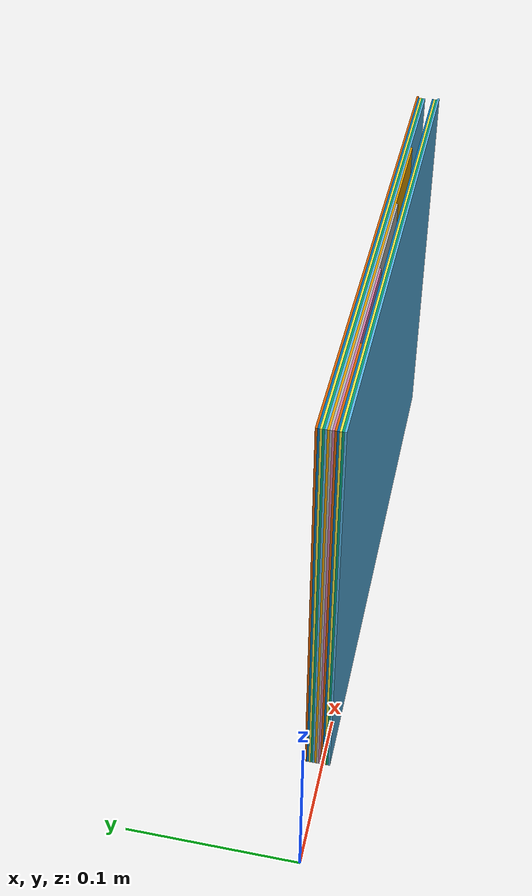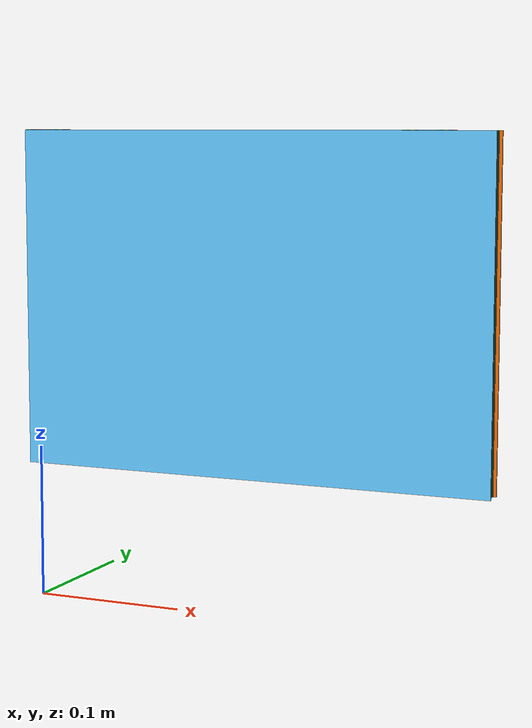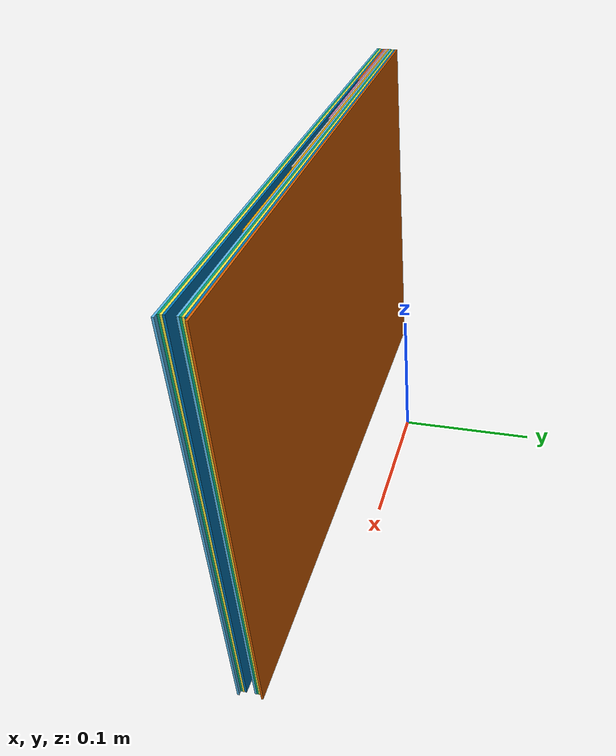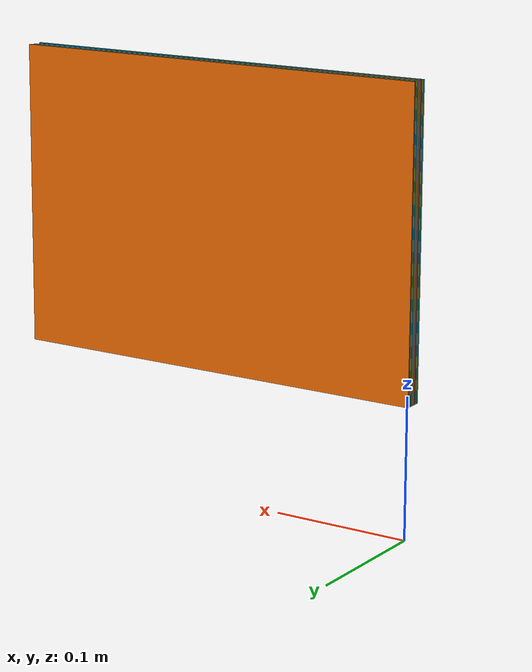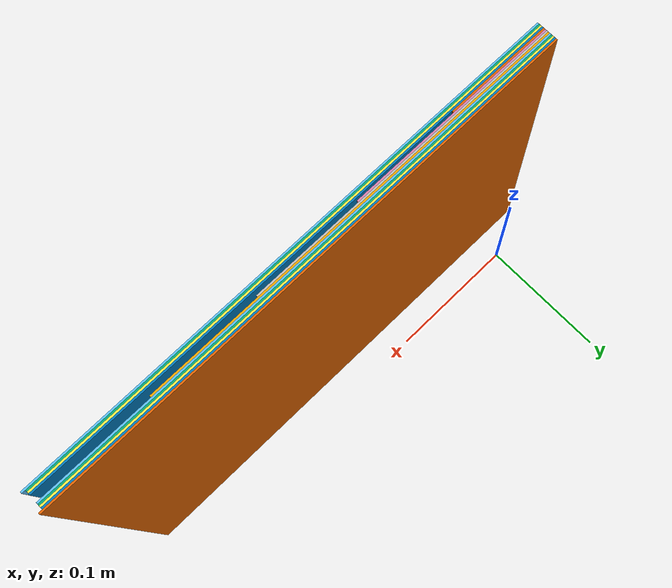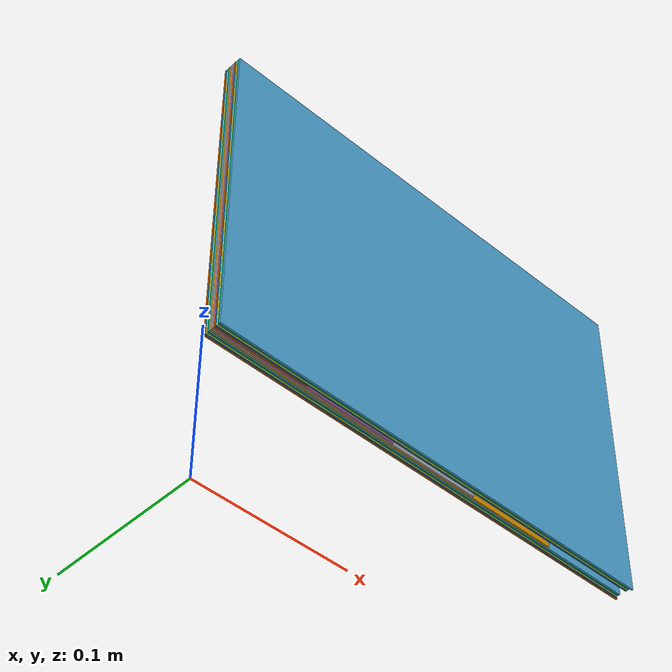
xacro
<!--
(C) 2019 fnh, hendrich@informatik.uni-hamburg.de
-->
<?xml version="1.0" ?>
<robot name="articulate_book_caterpillar"
       xmlns:controller="http://playerstage.sourceforge.net/gazebo/xmlschema/#controller"
       xmlns:interface="http://playerstage.sourceforge.net/gazebo/xmlschema/#interface"
       xmlns:sensor="http://playerstage.sourceforge.net/gazebo/xmlschema/#sensor"
       xmlns:xacro="http://www.ros.org/wiki/xacro">

  <xacro:include filename="$(find tams_books_world)/urdf/book_part.xacro" />

  <!-- main link, no inertia, no collision, no visual -->
  <link name="book_caterpillar_link" >
  </link>

  <xacro:book_part
      name="book_caterpillar_page_01"
      weight="0.039"
      mesh="caterpillar/book-caterpillar-part-01.dae"
      xsize="0.312"
      ysize="0.001"
      zsize="0.216"
  />
  <xacro:book_part
      name="book_caterpillar_page_02"
      weight="0.039"
      mesh="caterpillar/book-caterpillar-part-02.dae"
      xsize="0.310"
      ysize="0.001"
      zsize="0.216"
  />
  <xacro:book_part
      name="book_caterpillar_page_03"
      weight="0.039"
      mesh="caterpillar/book-caterpillar-part-03.dae"
      xsize="0.310"
      ysize="0.001"
      zsize="0.216"
  />
  <xacro:book_part
      name="book_caterpillar_page_04"
      weight="0.039"
      mesh="caterpillar/book-caterpillar-part-04.dae"
      xsize="0.310"
      ysize="0.001"
      zsize="0.216"
  />
  <xacro:book_part
      name="book_caterpillar_page_05"
      weight="0.039"
      mesh="caterpillar/book-caterpillar-part-05.dae"
      xsize="${0.310/5}"
      ysize="0.001"
      zsize="0.216"
  />
  <xacro:book_part
      name="book_caterpillar_page_06"
      weight="0.039"
      mesh="caterpillar/book-caterpillar-part-06.dae"
      xsize="${0.310/5*2}"
      ysize="0.001"
      zsize="0.216"
  />
  <xacro:book_part
      name="book_caterpillar_page_07"
      weight="0.039"
      mesh="caterpillar/book-caterpillar-part-07.dae"
      xsize="${0.310/5*3}"
      ysize="0.001"
      zsize="0.216"
  />
  <xacro:book_part
      name="book_caterpillar_page_08"
      weight="0.039"
      mesh="caterpillar/book-caterpillar-part-08.dae"
      xsize="${0.310/5*4}"
      ysize="0.001"
      zsize="0.216"
  />
  <xacro:book_part
      name="book_caterpillar_page_09"
      weight="0.039"
      mesh="caterpillar/book-caterpillar-part-09.dae"
      xsize="0.310"
      ysize="0.001"
      zsize="0.216"
  />
  <xacro:book_part
      name="book_caterpillar_page_10"
      weight="0.039"
      mesh="caterpillar/book-caterpillar-part-10.dae"
      xsize="0.310"
      ysize="0.001"
      zsize="0.216"
  />
  <xacro:book_part
      name="book_caterpillar_page_11"
      weight="0.039"
      mesh="caterpillar/book-caterpillar-part-11.dae"
      xsize="0.310"
      ysize="0.001"
      zsize="0.216"
  />
  <xacro:book_part
      name="book_caterpillar_page_12"
      weight="0.039"
      mesh="caterpillar/book-caterpillar-part-12.dae"
      xsize="0.310"
      ysize="0.001"
      zsize="0.216"
  />
  <xacro:book_part
      name="book_caterpillar_page_13"
      weight="0.039"
      mesh="caterpillar/book-caterpillar-part-13.dae"
      xsize="0.312"
      ysize="0.001"
      zsize="0.216"
  />

  <!-- back part of the book fixed to the root link -->
  <joint name="book_caterpillar_page_13_joint" type="fixed" >
    <parent link="book_caterpillar_link" />
    <child  link="book_caterpillar_page_13_link" />
    <origin xyz="0 ${-0.013/13} 0" rpy="0 0 0" />
  </joint>

  <joint name="book_caterpillar_page_12_joint" type="revolute" >
    <parent link="book_caterpillar_page_13_link" />
    <child  link="book_caterpillar_page_12_link" />
    <axis xyz="0 0 1" />
    <origin xyz="0 ${-0.013/13} 0" rpy="0 0 0" />
    <limit lower="-3.20" upper="0.0" effort="1" velocity="1" />
  </joint>

  <joint name="book_caterpillar_page_11_joint" type="revolute" >
    <parent link="book_caterpillar_page_12_link" />
    <child  link="book_caterpillar_page_11_link" />
    <axis xyz="0 0 1" />
    <origin xyz="0 ${-0.013/13} 0" rpy="0 0 0" />
    <limit lower="-3.20" upper="0.0" effort="1" velocity="1" />
  </joint>

  <joint name="book_caterpillar_page_10_joint" type="revolute" >
    <parent link="book_caterpillar_page_11_link" />
    <child  link="book_caterpillar_page_10_link" />
    <axis xyz="0 0 1" />
    <origin xyz="0 ${-0.013/13} 0" rpy="0 0 0" />
    <limit lower="-3.20" upper="0.0" effort="1" velocity="1" />
  </joint>

  <joint name="book_caterpillar_page_09_joint" type="revolute" >
    <parent link="book_caterpillar_page_10_link" />
    <child  link="book_caterpillar_page_09_link" />
    <axis xyz="0 0 1" />
    <origin xyz="0 ${-0.013/13} 0" rpy="0 0 0" />
    <limit lower="-3.20" upper="0.0" effort="1" velocity="1" />
  </joint>

  <joint name="book_caterpillar_page_08_joint" type="revolute" >
    <parent link="book_caterpillar_page_09_link" />
    <child  link="book_caterpillar_page_08_link" />
    <axis xyz="0 0 1" />
    <origin xyz="0 ${-0.013/13} 0" rpy="0 0 0" />
    <limit lower="-3.20" upper="0.0" effort="1" velocity="1" />
  </joint>

  <joint name="book_caterpillar_page_07_joint" type="revolute" >
    <parent link="book_caterpillar_page_08_link" />
    <child  link="book_caterpillar_page_07_link" />
    <axis xyz="0 0 1" />
    <origin xyz="0 ${-0.013/13} 0" rpy="0 0 0" />
    <limit lower="-3.20" upper="0.0" effort="1" velocity="1" />
  </joint>

  <joint name="book_caterpillar_page_06_joint" type="revolute" >
    <parent link="book_caterpillar_page_07_link" />
    <child  link="book_caterpillar_page_06_link" />
    <axis xyz="0 0 1" />
    <origin xyz="0 ${-0.013/13} 0" rpy="0 0 0" />
    <limit lower="-3.20" upper="0.0" effort="1" velocity="1" />
  </joint>

  <joint name="book_caterpillar_page_05_joint" type="revolute" >
    <parent link="book_caterpillar_page_06_link" />
    <child  link="book_caterpillar_page_05_link" />
    <axis xyz="0 0 1" />
    <origin xyz="0 ${-0.013/13} 0" rpy="0 0 0" />
    <limit lower="-3.20" upper="0.0" effort="1" velocity="1" />
  </joint>

  <joint name="book_caterpillar_page_04_joint" type="revolute" >
    <parent link="book_caterpillar_page_05_link" />
    <child  link="book_caterpillar_page_04_link" />
    <axis xyz="0 0 1" />
    <origin xyz="0 ${-0.013/13} 0" rpy="0 0 0" />
    <limit lower="-3.20" upper="0.0" effort="1" velocity="1" />
  </joint>

  <joint name="book_caterpillar_page_03_joint" type="revolute" >
    <parent link="book_caterpillar_page_04_link" />
    <child  link="book_caterpillar_page_03_link" />
    <axis xyz="0 0 1" />
    <origin xyz="0 ${-0.013/13} 0" rpy="0 0 0" />
    <limit lower="-3.20" upper="0.0" effort="1" velocity="1" />
  </joint>

  <joint name="book_caterpillar_page_02_joint" type="revolute" >
    <parent link="book_caterpillar_page_03_link" />
    <child  link="book_caterpillar_page_02_link" />
    <axis xyz="0 0 1" />
    <origin xyz="0 ${-0.013/13} 0" rpy="0 0 0" />
    <limit lower="-3.20" upper="0.0" effort="1" velocity="1" />
  </joint>

  <joint name="book_caterpillar_page_01_joint" type="revolute" >
    <parent link="book_caterpillar_page_02_link" />
    <child  link="book_caterpillar_page_01_link" />
    <axis xyz="0 0 1" />
    <origin xyz="0 ${-0.013/13} 0" rpy="0 0 0" />
    <limit lower="-3.20" upper="0.0" effort="1" velocity="1" />
  </joint>

  <!-- gazebo only  -->
  <link name="world" />

  <joint name="book_caterpillar_world_joint" type="fixed" >
    <parent link="world" />
    <child  link="book_caterpillar_link" />
    <origin xyz="0 0 0.2" rpy="0 0 0" />
  </joint>

</robot>

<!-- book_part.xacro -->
<robot name="book_part"
       xmlns:controller="http://playerstage.sourceforge.net/gazebo/xmlschema/#controller"
       xmlns:interface="http://playerstage.sourceforge.net/gazebo/xmlschema/#interface"
       xmlns:sensor="http://playerstage.sourceforge.net/gazebo/xmlschema/#sensor"
       xmlns:xacro="http://www.ros.org/wiki/xacro">

<xacro:macro name="book_part" params="name weight mesh xsize ysize zsize">

  <!-- main body with Collada mesh for both visual and collision -->
  <link name="${name}_link">
    <inertial>
      <mass value="${weight}"/>
      <origin rpy="0 0 0" xyz="${xsize/2} ${-ysize/2} 0"/>
      <inertia ixx="0.001" ixy="0" ixz="0" iyy="0.001" iyz="0" izz="0.001"/>
    </inertial>
    <collision>
      <origin rpy="0 0 0" xyz="${xsize/2} ${-ysize/2} 0"/>
      <geometry>
        <box size="${xsize} ${ysize} ${zsize}" rpy="0 0 0" />
      </geometry>
    </collision>
    <visual>
      <origin rpy="0 0 0" xyz="${xsize/2} ${-ysize/2} 0"/>
      <geometry>
        <mesh filename="package://tams_books_world/meshes/${mesh}" scale="${0.5*xsize} ${0.5*ysize} ${0.5*zsize}" />
      </geometry>
    </visual>
  </link>
  <gazebo reference="${name}_link">
    <!-- material/texture definition for Gazebo -->
    <turnGravityOff>false</turnGravityOff>
    <selfCollide>true</selfCollide>
    <mu1>10</mu1>
    <mu2>20</mu2>
    <kp>1000000.0</kp>
    <kd>1.0</kd>
  </gazebo>
</xacro:macro>

</robot>
